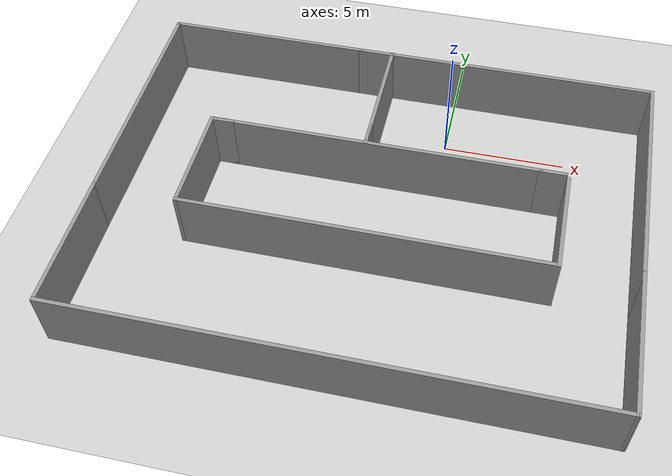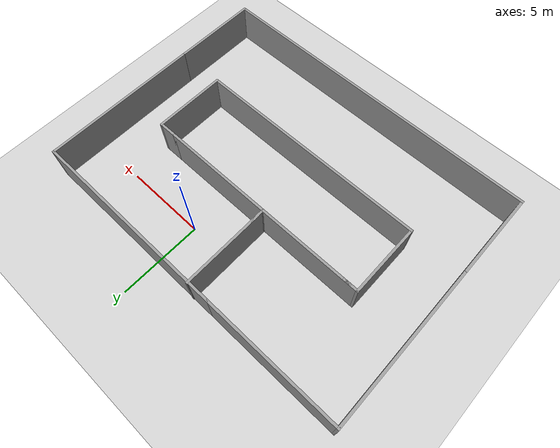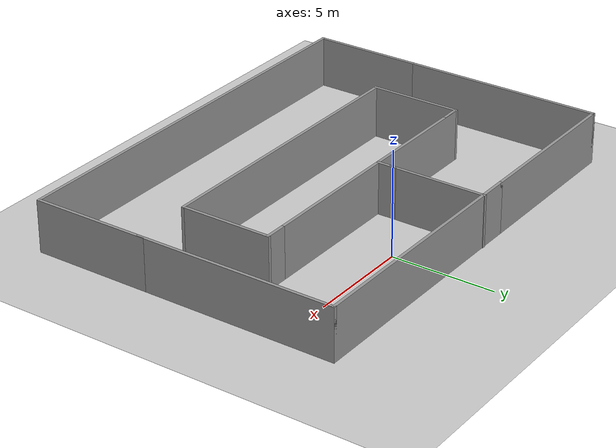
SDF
<sdf version="1.7">
 <world name="default">
  <light name="sun" type="directional">
   <pose>0 0 10 0 -0 0</pose>
   <diffuse>0.8 0.8 0.8 1</diffuse>
   <specular>0.2 0.2 0.2 1</specular>
   <attenuation>
    <range>1000</range>
    <constant>0.9</constant>
    <linear>0.01</linear>
    <quadratic>0.001</quadratic>
   </attenuation>
   <direction>-0.5 0.1 -0.9</direction>
   <spot><inner_angle>0</inner_angle><outer_angle>0</outer_angle><falloff>0</falloff></spot>
  </light>
  <model name="ground_plane">
   <static>1</static>
   <link name="link">
    <collision name="collision">
     <geometry><plane><normal>0 0 1</normal><size>100 100</size></plane></geometry>
     <surface>
      <contact><collide_bitmask>65535</collide_bitmask></contact>
      <friction><ode><mu>100</mu><mu2>50</mu2></ode></friction>
     </surface>
    </collision>
    <visual name="visual">
     <cast_shadows>0</cast_shadows>
     <geometry><plane><normal>0 0 1</normal><size>100 100</size></plane></geometry>
     <material>
      <script><uri>file://media/materials/scripts/gazebo.material</uri><name>Gazebo/Grey</name></script>
     </material>
    </visual>
   </link>
  </model>
  <gravity>0 0 -9.8</gravity>
  <magnetic_field>6e-06 2.3e-05 -4.2e-05</magnetic_field>
  <atmosphere type="adiabatic"/>
  <physics type="ode">
   <max_step_size>0.001</max_step_size>
   <real_time_factor>1</real_time_factor>
   <real_time_update_rate>1000</real_time_update_rate>
  </physics>
  <scene><ambient>0.4 0.4 0.4 1</ambient><background>0.7 0.7 0.7 1</background><shadows>1</shadows></scene>
  <spherical_coordinates>
   <surface_model>EARTH_WGS84</surface_model>
   <latitude_deg>0</latitude_deg>
   <longitude_deg>0</longitude_deg>
   <elevation>0</elevation>
   <heading_deg>0</heading_deg>
  </spherical_coordinates>
  <model name="Untitled">
   <pose>-2.21727 -4.81157 0 0 -0 0</pose>
   <link name="Wall_12">
    <collision name="Wall_12_Collision">
     <geometry><box><size>5.5 0.15 2.5</size></box></geometry>
     <pose>0 0 1.25 0 -0 0</pose>
    </collision>
    <visual name="Wall_12_Visual">
     <pose>0 0 1.25 0 -0 0</pose>
     <geometry><box><size>5.5 0.15 2.5</size></box></geometry>
     <material>
      <script><uri>file://media/materials/scripts/gazebo.material</uri><name>Gazebo/Grey</name></script>
      <ambient>1 1 1 1</ambient>
     </material>
     <meta><layer>0</layer></meta>
    </visual>
    <pose>-10.3 -4.81589 0 0 -0 -1.5708</pose>
   </link>
   <link name="Wall_13">
    <collision name="Wall_13_Collision">
     <geometry><box><size>20.75 0.15 2.5</size></box></geometry>
     <pose>0 0 1.25 0 -0 0</pose>
    </collision>
    <visual name="Wall_13_Visual">
     <pose>0 0 1.25 0 -0 0</pose>
     <geometry><box><size>20.75 0.15 2.5</size></box></geometry>
     <material>
      <script><uri>file://media/materials/scripts/gazebo.material</uri><name>Gazebo/Grey</name></script>
      <ambient>1 1 1 1</ambient>
     </material>
     <meta><layer>0</layer></meta>
    </visual>
    <pose>-0 -7.49089 0 0 -0 0</pose>
   </link>
   <link name="Wall_14">
    <collision name="Wall_14_Collision">
     <geometry><box><size>5.75 0.15 2.5</size></box></geometry>
     <pose>0 0 1.25 0 -0 0</pose>
    </collision>
    <visual name="Wall_14_Visual">
     <pose>0 0 1.25 0 -0 0</pose>
     <geometry><box><size>5.75 0.15 2.5</size></box></geometry>
     <material>
      <script><uri>file://media/materials/scripts/gazebo.material</uri><name>Gazebo/Grey</name></script>
      <ambient>1 1 1 1</ambient>
     </material>
     <meta><layer>0</layer></meta>
    </visual>
    <pose>10.3 -4.69089 0 0 -0 1.5708</pose>
   </link>
   <link name="Wall_16">
    <collision name="Wall_16_Collision">
     <geometry><box><size>13.25 0.15 2.5</size></box></geometry>
     <pose>0 0 1.25 0 -0 0</pose>
    </collision>
    <visual name="Wall_16_Visual">
     <pose>0 0 1.25 0 -0 0</pose>
     <geometry><box><size>13.25 0.15 2.5</size></box></geometry>
     <material>
      <script><uri>file://media/materials/scripts/gazebo.material</uri><name>Gazebo/Grey</name></script>
      <ambient>1 1 1 1</ambient>
     </material>
     <meta><layer>0</layer></meta>
    </visual>
    <pose>-0.324858 2.17085 0 0 -0 0</pose>
   </link>
   <link name="Wall_17">
    <collision name="Wall_17_Collision">
     <geometry><box><size>1.25 0.15 2.5</size></box></geometry>
     <pose>0 0 1.25 0 -0 0</pose>
    </collision>
    <visual name="Wall_17_Visual">
     <pose>0 0 1.25 0 -0 0</pose>
     <geometry><box><size>1.25 0.15 2.5</size></box></geometry>
     <material>
      <script><uri>file://media/materials/scripts/gazebo.material</uri><name>Gazebo/Grey</name></script>
      <ambient>1 1 1 1</ambient>
     </material>
     <meta><layer>0</layer></meta>
    </visual>
    <pose>6.77514 2.17085 0 0 -0 0</pose>
   </link>
   <link name="Wall_18">
    <collision name="Wall_18_Collision">
     <geometry><box><size>4.5 0.15 2.5</size></box></geometry>
     <pose>0 0 1.25 0 -0 0</pose>
    </collision>
    <visual name="Wall_18_Visual">
     <pose>0 0 1.25 0 -0 0</pose>
     <geometry><box><size>4.5 0.15 2.5</size></box></geometry>
     <material>
      <script><uri>file://media/materials/scripts/gazebo.material</uri><name>Gazebo/Grey</name></script>
      <ambient>1 1 1 1</ambient>
     </material>
     <meta><layer>0</layer></meta>
    </visual>
    <pose>7.32514 -0.004148 0 0 -0 -1.5708</pose>
   </link>
   <link name="Wall_19">
    <collision name="Wall_19_Collision">
     <geometry><box><size>14.5 0.15 2.5</size></box></geometry>
     <pose>0 0 1.25 0 -0 0</pose>
    </collision>
    <visual name="Wall_19_Visual">
     <pose>0 0 1.25 0 -0 0</pose>
     <geometry><box><size>14.5 0.15 2.5</size></box></geometry>
     <material>
      <script><uri>file://media/materials/scripts/gazebo.material</uri><name>Gazebo/Grey</name></script>
      <ambient>1 1 1 1</ambient>
     </material>
     <meta><layer>0</layer></meta>
    </visual>
    <pose>0.150142 -2.17915 0 0 -0 3.14159</pose>
   </link>
   <link name="Wall_20">
    <collision name="Wall_20_Collision">
     <geometry><box><size>4.5 0.15 2.5</size></box></geometry>
     <pose>0 0 1.25 0 -0 0</pose>
    </collision>
    <visual name="Wall_20_Visual">
     <pose>0 0 1.25 0 -0 0</pose>
     <geometry><box><size>4.5 0.15 2.5</size></box></geometry>
     <material>
      <script><uri>file://media/materials/scripts/gazebo.material</uri><name>Gazebo/Grey</name></script>
      <ambient>1 1 1 1</ambient>
     </material>
     <meta><layer>0</layer></meta>
    </visual>
    <pose>-7.02486 -0.004148 0 0 -0 1.5708</pose>
   </link>
   <link name="Wall_21">
    <collision name="Wall_21_Collision">
     <geometry><box><size>1 0.15 2.5</size></box></geometry>
     <pose>0 0 1.25 0 -0 0</pose>
    </collision>
    <visual name="Wall_21_Visual">
     <pose>0 0 1.25 0 -0 0</pose>
     <geometry><box><size>1 0.15 2.5</size></box></geometry>
     <material>
      <script><uri>file://media/materials/scripts/gazebo.material</uri><name>Gazebo/Grey</name></script>
      <ambient>1 1 1 1</ambient>
     </material>
     <meta><layer>0</layer></meta>
    </visual>
    <pose>-6.59986 2.17085 0 0 -0 0</pose>
   </link>
   <link name="Wall_24">
    <collision name="Wall_24_Collision">
     <geometry><box><size>5.25 0.15 2.5</size></box></geometry>
     <pose>0 0 1.25 0 -0 0</pose>
    </collision>
    <visual name="Wall_24_Visual">
     <pose>0 0 1.25 0 -0 0</pose>
     <geometry><box><size>5.25 0.15 2.5</size></box></geometry>
     <material>
      <script><uri>file://media/materials/scripts/gazebo.material</uri><name>Gazebo/Grey</name></script>
      <ambient>1 1 1 1</ambient>
     </material>
     <meta><layer>0</layer></meta>
    </visual>
    <pose>-0.675855 4.94089 0 0 -0 -1.5708</pose>
   </link>
   <link name="Wall_26">
    <collision name="Wall_26_Collision">
     <geometry><box><size>1 0.15 2.5</size></box></geometry>
     <pose>0 0 1.25 0 -0 0</pose>
    </collision>
    <visual name="Wall_26_Visual">
     <pose>0 0 1.25 0 -0 0</pose>
     <geometry><box><size>1 0.15 2.5</size></box></geometry>
     <material>
      <script><uri>file://media/materials/scripts/gazebo.material</uri><name>Gazebo/Grey</name></script>
      <ambient>1 1 1 1</ambient>
     </material>
     <meta><layer>0</layer></meta>
    </visual>
    <pose>-0.675855 2.62481 0 0 -0 -1.5708</pose>
   </link>
   <link name="Wall_3">
    <collision name="Wall_3_Collision">
     <geometry><box><size>12.5 0.15 2.5</size></box></geometry>
     <pose>0 0 1.25 0 -0 0</pose>
    </collision>
    <visual name="Wall_3_Visual">
     <pose>0 0 1.25 0 -0 0</pose>
     <geometry><box><size>12.5 0.15 2.5</size></box></geometry>
     <material>
      <script><uri>file://media/materials/scripts/gazebo.material</uri><name>Gazebo/Grey</name></script>
      <ambient>1 1 1 1</ambient>
     </material>
     <meta><layer>0</layer></meta>
    </visual>
    <pose>4.125 7.45911 0 0 -0 0</pose>
   </link>
   <link name="Wall_4">
    <collision name="Wall_4_Collision">
     <geometry><box><size>9.75 0.15 2.5</size></box></geometry>
     <pose>0 0 1.25 0 -0 0</pose>
    </collision>
    <visual name="Wall_4_Visual">
     <pose>0 0 1.25 0 -0 0</pose>
     <geometry><box><size>9.75 0.15 2.5</size></box></geometry>
     <material>
      <script><uri>file://media/materials/scripts/gazebo.material</uri><name>Gazebo/Grey</name></script>
      <ambient>1 1 1 1</ambient>
     </material>
     <meta><layer>0</layer></meta>
    </visual>
    <pose>10.3 2.65911 0 0 -0 -1.5708</pose>
   </link>
   <link name="Wall_6">
    <collision name="Wall_6_Collision">
     <geometry><box><size>9.75 0.15 2.5</size></box></geometry>
     <pose>0 0 1.25 0 -0 0</pose>
    </collision>
    <visual name="Wall_6_Visual">
     <pose>0 0 1.25 0 -0 0</pose>
     <geometry><box><size>9.75 0.15 2.5</size></box></geometry>
     <material>
      <script><uri>file://media/materials/scripts/gazebo.material</uri><name>Gazebo/Grey</name></script>
      <ambient>1 1 1 1</ambient>
     </material>
     <meta><layer>0</layer></meta>
    </visual>
    <pose>-10.3 2.65911 0 0 -0 1.5708</pose>
   </link>
   <link name="Wall_7">
    <collision name="Wall_7_Collision">
     <geometry><box><size>8.4 0.15 2.5</size></box></geometry>
     <pose>0 0 1.25 0 -0 0</pose>
    </collision>
    <visual name="Wall_7_Visual">
     <pose>0 0 1.25 0 -0 0</pose>
     <geometry><box><size>8.4 0.15 2.5</size></box></geometry>
     <material>
      <script><uri>file://media/materials/scripts/gazebo.material</uri><name>Gazebo/Grey</name></script>
      <ambient>1 1 1 1</ambient>
     </material>
     <meta><layer>0</layer></meta>
    </visual>
    <pose>-6.175 7.45911 0 0 -0 0</pose>
   </link>
   <static>1</static>
  </model>
 </world>
</sdf>
